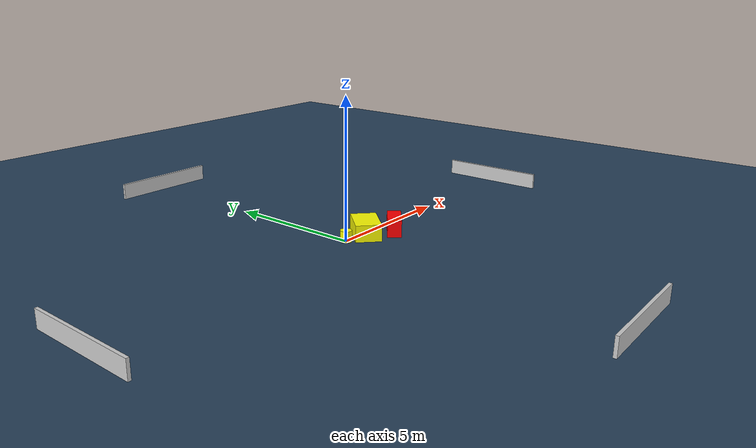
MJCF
<?xml version="1.0" ?>
<mujoco model="generated_environment">
  <option timestep="0.01" integrator="RK4" cone="elliptic"/>
  <default>
    <geom density="1"/>
  </default>
  <asset>
    <texture builtin="gradient" height="3072" name="skybox" rgb1="0.3 0.5 0.7" rgb2="0 0 0" type="skybox" width="512"/>
    <texture builtin="checker" height="300" name="groundplane" rgb1="0.2 0.3 0.4" rgb2="0.1 0.2 0.3" type="2d" width="300"/>
    <material name="groundplane" reflectance="0.2" texrepeat="5 5" texture="groundplane"/>
  </asset>
  <worldbody>
    <light dir="0 0 -1" directional="true" pos="0 0 1.5"/>
    <geom condim="3" friction="0.5 0.005 0.001" material="groundplane" name="floor" pos="0 0 0" size="0 0 0.05" type="plane"/>
    <body name="walls">
      <geom name="wall_1" condim="4" pos="-10.0 0.0 0.3" rgba="0.800000011920929 0.800000011920929 0.800000011920929 1.0" size="0.05 2.0 0.3" type="box"/>
      <geom name="wall_2" condim="4" pos="10.0 0.0 0.3" rgba="0.800000011920929 0.800000011920929 0.800000011920929 1.0" size="0.05 2.0 0.3" type="box"/>
      <geom name="wall_3" condim="4" pos="0.0 -10.0 0.3" rgba="0.800000011920929 0.800000011920929 0.800000011920929 1.0" size="2.0 0.05 0.3" type="box"/>
      <geom name="wall_4" condim="4" pos="0.0 10.0 0.3" rgba="0.800000011920929 0.800000011920929 0.800000011920929 1.0" size="2.0 0.05 0.3" type="box"/>
    </body>
    <body name="robot">
      <joint name="joint_x" type="slide" pos="0 0 0" axis="1 0 0"/>
      <joint name="joint_y" type="slide" pos="0 0 0" axis="0 1 0"/>
      <geom name="robot" type="cylinder" pos="0.0 0.0 0.2" size="0.2 0.2 0.0" mass="5.0" friction="1.0 0.005 0.0001" condim="4" rgba="1.0 1.0 0.0 1.0"/>
    </body>
    <body name="obstacle_1_movable">
      <geom name="obstacle_1_movable" condim="4" pos="0.8794131320465101 -0.16094100740603362 0.3" euler="0 0 137.09105775893696" friction="0.0 0.005 0.001" rgba="1.0 1.0 0.0 1.0" size="0.4569502969634236 0.6688392048125309 0.3" type="box" mass="0.1"/>
      <joint type="free"/>
    </body>
    <body name="obstacle_2_static">
      <geom name="obstacle_2_static" condim="4" pos="1.816954090491407 -0.6916585119038519 0.3" euler="0 0 217.79858896425307" friction="0.0 0.005 0.001" rgba="1.0 0.0 0.0 1.0" size="0.5830900084300916 0.24752963968394626 0.3" type="box"/>
    </body>
  </worldbody>
  <actuator>
    <motor name="actuator_x" joint="joint_x" gear="1" ctrlrange="-1 1"/>
    <motor name="actuator_y" joint="joint_y" gear="1" ctrlrange="-1 1"/>
  </actuator>
</mujoco>
